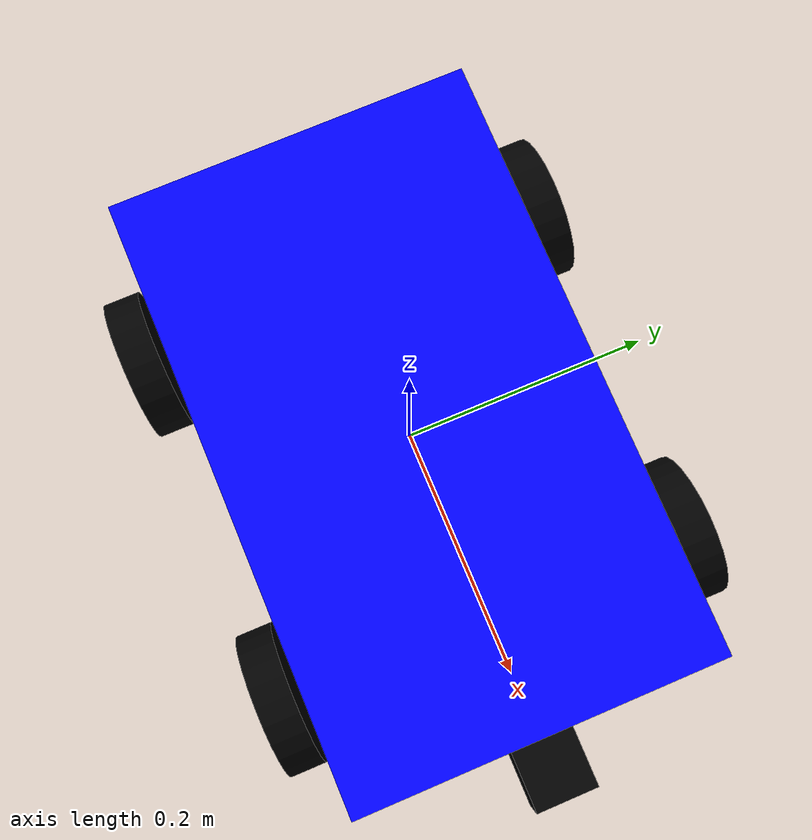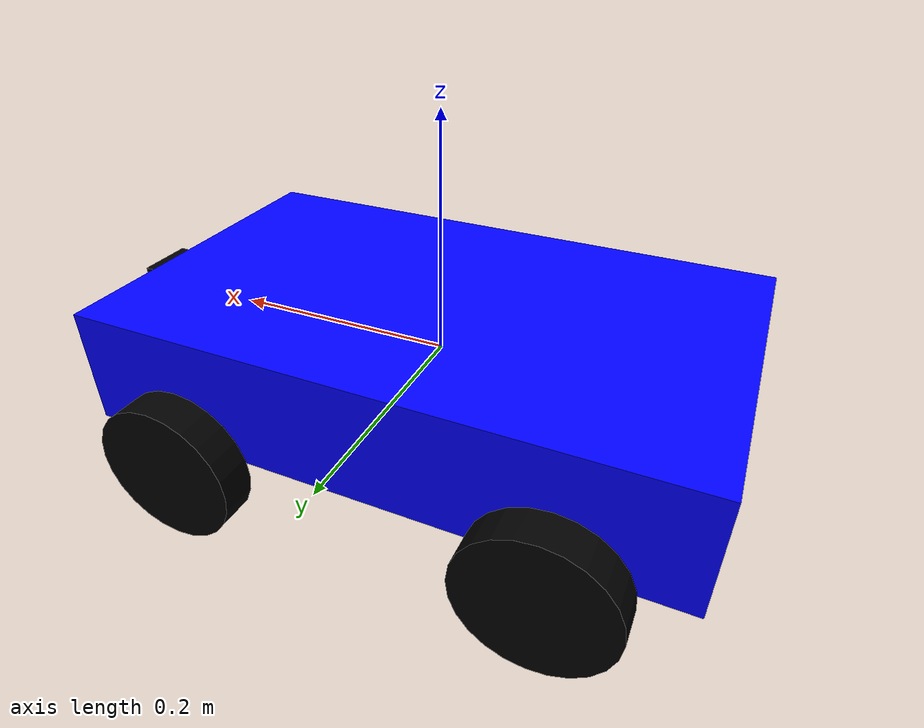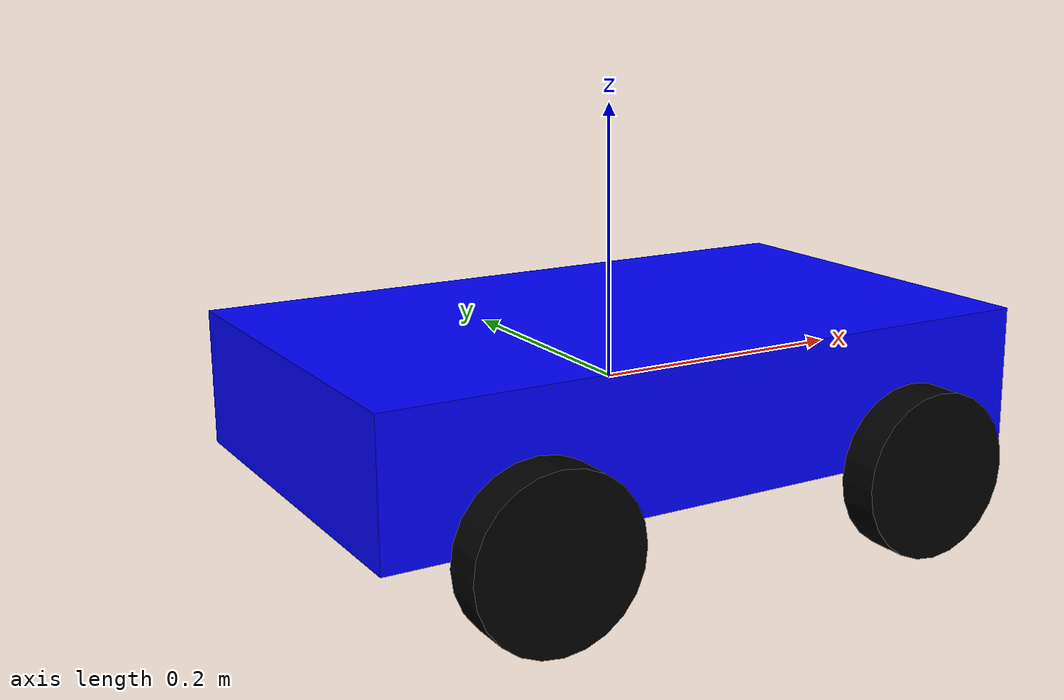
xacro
<?xml version="1.0"?>
<robot name="mobile_robot" xmlns:xacro="http://ros.org/wiki/xacro">

  <!-- Define robot constants -->
  <xacro:property name="width" value="0.3"/>
  <xacro:property name="length" value="0.5"/>
  <xacro:property name="height" value="0.1"/>
  <xacro:arg name="robot_color" default="Gazebo/Blue"/> <!-- allow spawning with custom colors (e.g., Gazebo/Green for leader) -->
  <xacro:property name="wheel_radius" value="0.06"/>
  <xacro:property name="wheel_width" value="0.03"/>
  <xacro:property name="wheel_separation" value="0.35"/>
  <xacro:property name="wheel_base" value="0.3"/> <!-- Distance between front and rear axle -->

  <!-- Base Link -->
  <link name="base_link">
    <visual>
      <geometry>
        <box size="${length} ${width} ${height}"/>
      </geometry>
      <material name="blue">
        <color rgba="0 0 1 1"/>
      </material>
    </visual>
    <collision>
      <geometry>
        <box size="${length} ${width} ${height}"/>
      </geometry>
    </collision>
    <inertial>
      <mass value="2.0"/>
      <inertia ixx="0.02" ixy="0.0" ixz="0.0" iyy="0.02" iyz="0.0" izz="0.02"/>
    </inertial>
  </link>

  <!-- Wheel Macro -->
  <xacro:macro name="wheel" params="prefix x_reflect y_reflect">
    <link name="${prefix}_wheel">
      <visual>
        <geometry>
          <cylinder radius="${wheel_radius}" length="${wheel_width}"/>
        </geometry>
        <material name="black">
          <color rgba="0 0 0 1"/>
        </material>
      </visual>
      <collision>
        <geometry>
          <cylinder radius="${wheel_radius}" length="${wheel_width}"/>
        </geometry>
      </collision>
      <inertial>
        <mass value="0.5"/>
        <inertia ixx="0.001" ixy="0.0" ixz="0.0" iyy="0.001" iyz="0.0" izz="0.001"/>
      </inertial>
    </link>

    <joint name="${prefix}_wheel_joint" type="continuous">
      <parent link="base_link"/>
      <child link="${prefix}_wheel"/>
      <origin xyz="${x_reflect * wheel_base/2} ${y_reflect * wheel_separation/2} -${height/2}" rpy="-1.5707 0 0"/>
      <axis xyz="0 0 1"/>
    </joint>

    <gazebo reference="${prefix}_wheel">
      <material>Gazebo/Black</material>
    </gazebo>
  </xacro:macro>

  <!-- Instantiate 4 Wheels -->
  <xacro:wheel prefix="front_left" x_reflect="1" y_reflect="1"/>
  <xacro:wheel prefix="front_right" x_reflect="1" y_reflect="-1"/>
  <xacro:wheel prefix="rear_left" x_reflect="-1" y_reflect="1"/>
  <xacro:wheel prefix="rear_right" x_reflect="-1" y_reflect="-1"/>

  <!-- Base Link Material -->
  <gazebo reference="base_link">
    <material>$(arg robot_color)</material>
  </gazebo>

  <!-- Add Camera Sensor for Follower Drones -->
  <link name="camera_link">
    <visual>
      <geometry>
        <box size="0.05 0.05 0.05"/>
      </geometry>
      <material name="black"/>
    </visual>
  </link>

  <joint name="camera_joint" type="fixed">
    <parent link="base_link"/>
    <child link="camera_link"/>
    <origin xyz="${length/2 + 0.025} 0 0" rpy="0 0 0"/> <!-- at the exact front center -->
  </joint>

  <!-- Camera Plugin -->
  <gazebo reference="camera_link">
    <sensor type="camera" name="camera">
      <update_rate>30.0</update_rate>
      <camera>
        <horizontal_fov>1.3962634</horizontal_fov>
        <image>
          <width>640</width>
          <height>480</height>
          <format>R8G8B8</format>
        </image>
        <clip>
          <near>0.02</near>
          <far>300</far>
        </clip>
      </camera>
      <plugin name="camera_controller" filename="libgazebo_ros_camera.so">
        <alwaysOn>true</alwaysOn>
        <updateRate>30.0</updateRate>
        <cameraName>camera</cameraName>
        <imageTopicName>image_raw</imageTopicName>
        <cameraInfoTopicName>camera_info</cameraInfoTopicName>
        <frameName>camera_link</frameName>
      </plugin>
    </sensor>
  </gazebo>

  <!-- Skid Steer Drive Plugin -->
  <gazebo>
    <plugin name="diff_drive" filename="libgazebo_ros_diff_drive.so">
      <ros>
        <namespace>/</namespace>
      </ros>
      <update_rate>100.0</update_rate>
      <num_wheel_pairs>2</num_wheel_pairs>

      <!-- wheels -->
      <left_joint>front_left_wheel_joint</left_joint>
      <left_joint>rear_left_wheel_joint</left_joint>
      <right_joint>front_right_wheel_joint</right_joint>
      <right_joint>rear_right_wheel_joint</right_joint>

      <wheel_separation>${wheel_separation}</wheel_separation>
      <wheel_diameter>${wheel_radius * 2}</wheel_diameter>
      <max_wheel_torque>20</max_wheel_torque>
      <max_wheel_acceleration>1.0</max_wheel_acceleration>

      <command_topic>cmd_vel</command_topic>
      <odometry_topic>odom</odometry_topic>
      <odometry_frame>odom</odometry_frame>
      <robot_base_frame>base_link</robot_base_frame>

      <publish_odom>true</publish_odom>
      <publish_odom_tf>true</publish_odom_tf>
      <publish_wheel_tf>true</publish_wheel_tf>
    </plugin>
  </gazebo>

</robot>
